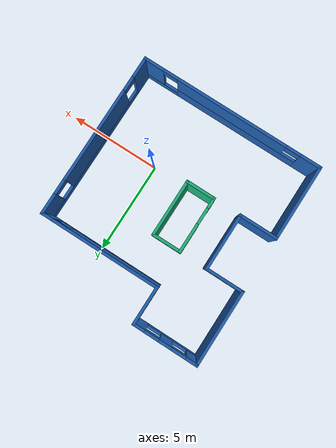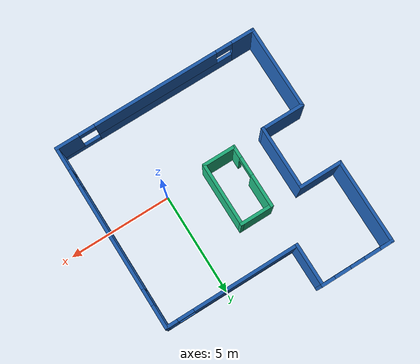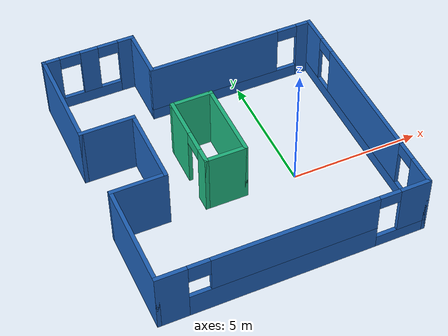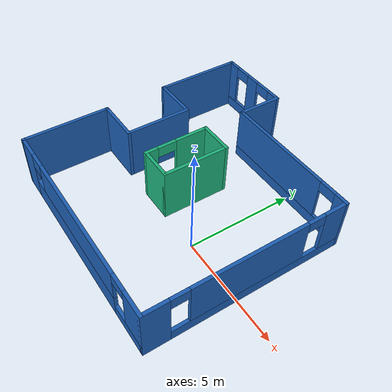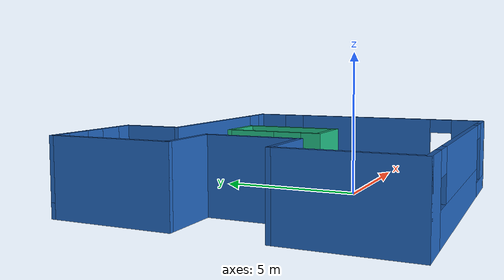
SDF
<?xml version='1.0'?>
<sdf version='1.6'>
  <model name='house'>
    <pose frame=''>-2 1.5 0 0 -0 0</pose>
    <link name='Wall_10'>
      <collision name='Wall_10_Collision'>
        <geometry>
          <box>
            <size>2.14909 0.15 2.5</size>
          </box>
        </geometry>
        <pose frame=''>0 0 1.25 0 -0 0</pose>
      </collision>
      <visual name='Wall_10_Visual'>
        <pose frame=''>0 0 1.25 0 -0 0</pose>
        <geometry>
          <box>
            <size>2.14909 0.15 2.5</size>
          </box>
        </geometry>
        <material>
          <script>
            <uri>file://media/materials/scripts/gazebo.material</uri>
            <name>Gazebo/Grey</name>
          </script>
          <ambient>0.117647 0.376471 0.709804 1</ambient>
        </material>
        <meta>
          <layer>0</layer>
        </meta>
      </visual>
      <pose frame=''>-1.5 4.5 0 0 -0 1.5708</pose>
    </link>
    <link name='Wall_11'>
      <pose frame=''>-3.25 5.5 0 0 -0 3.14159</pose>
      <visual name='Wall_11_Visual_0'>
        <pose frame=''>-1.4875 0 1.25 0 -0 0</pose>
        <geometry>
          <box>
            <size>0.675 0.15 2.5</size>
          </box>
        </geometry>
        <material>
          <script>
            <uri>file://media/materials/scripts/gazebo.material</uri>
            <name>Gazebo/Grey</name>
          </script>
          <ambient>0.117647 0.376471 0.709804 1</ambient>
        </material>
        <meta>
          <layer>0</layer>
        </meta>
      </visual>
      <collision name='Wall_11_Collision_0'>
        <geometry>
          <box>
            <size>0.675 0.15 2.5</size>
          </box>
        </geometry>
        <pose frame=''>-1.4875 0 1.25 0 -0 0</pose>
      </collision>
      <visual name='Wall_11_Visual_1'>
        <pose frame=''>0.3375 0 0.25 0 -0 0</pose>
        <geometry>
          <box>
            <size>2.975 0.15 0.5</size>
          </box>
        </geometry>
        <material>
          <script>
            <uri>file://media/materials/scripts/gazebo.material</uri>
            <name>Gazebo/Grey</name>
          </script>
          <ambient>0.117647 0.376471 0.709804 1</ambient>
        </material>
        <meta>
          <layer>0</layer>
        </meta>
      </visual>
      <collision name='Wall_11_Collision_1'>
        <geometry>
          <box>
            <size>2.975 0.15 0.5</size>
          </box>
        </geometry>
        <pose frame=''>0.3375 0 0.25 0 -0 0</pose>
      </collision>
      <visual name='Wall_11_Visual_2'>
        <pose frame=''>0 0 1.5 0 -0 0</pose>
        <geometry>
          <box>
            <size>0.7 0.15 2</size>
          </box>
        </geometry>
        <material>
          <script>
            <uri>file://media/materials/scripts/gazebo.material</uri>
            <name>Gazebo/Grey</name>
          </script>
          <ambient>0.117647 0.376471 0.709804 1</ambient>
        </material>
        <meta>
          <layer>0</layer>
        </meta>
      </visual>
      <collision name='Wall_11_Collision_2'>
        <geometry>
          <box>
            <size>0.7 0.15 2</size>
          </box>
        </geometry>
        <pose frame=''>0 0 1.5 0 -0 0</pose>
      </collision>
      <visual name='Wall_11_Visual_3'>
        <pose frame=''>1.4875 0 1.5 0 -0 0</pose>
        <geometry>
          <box>
            <size>0.675 0.15 2</size>
          </box>
        </geometry>
        <material>
          <script>
            <uri>file://media/materials/scripts/gazebo.material</uri>
            <name>Gazebo/Grey</name>
          </script>
          <ambient>0.117647 0.376471 0.709804 1</ambient>
        </material>
        <meta>
          <layer>0</layer>
        </meta>
      </visual>
      <collision name='Wall_11_Collision_3'>
        <geometry>
          <box>
            <size>0.675 0.15 2</size>
          </box>
        </geometry>
        <pose frame=''>1.4875 0 1.5 0 -0 0</pose>
      </collision>
      <visual name='Wall_11_Visual_4'>
        <pose frame=''>-0.75 0 2.25 0 -0 0</pose>
        <geometry>
          <box>
            <size>0.8 0.15 0.5</size>
          </box>
        </geometry>
        <material>
          <script>
            <uri>file://media/materials/scripts/gazebo.material</uri>
            <name>Gazebo/Grey</name>
          </script>
          <ambient>0.117647 0.376471 0.709804 1</ambient>
        </material>
        <meta>
          <layer>0</layer>
        </meta>
      </visual>
      <collision name='Wall_11_Collision_4'>
        <geometry>
          <box>
            <size>0.8 0.15 0.5</size>
          </box>
        </geometry>
        <pose frame=''>-0.75 0 2.25 0 -0 0</pose>
      </collision>
      <visual name='Wall_11_Visual_5'>
        <pose frame=''>0.75 0 2.25 0 -0 0</pose>
        <geometry>
          <box>
            <size>0.8 0.15 0.5</size>
          </box>
        </geometry>
        <material>
          <script>
            <uri>file://media/materials/scripts/gazebo.material</uri>
            <name>Gazebo/Grey</name>
          </script>
          <ambient>0.117647 0.376471 0.709804 1</ambient>
        </material>
        <meta>
          <layer>0</layer>
        </meta>
      </visual>
      <collision name='Wall_11_Collision_5'>
        <geometry>
          <box>
            <size>0.8 0.15 0.5</size>
          </box>
        </geometry>
        <pose frame=''>0.75 0 2.25 0 -0 0</pose>
      </collision>
    </link>
    <link name='Wall_13'>
      <pose frame=''>-1.5 0 0 0 0 -1.5708</pose>
      <visual name='Wall_13_Visual_0'>
        <pose frame=''>-0.7625 0 1.25 0 -0 0</pose>
        <geometry>
          <box>
            <size>1.625 0.15 2.5</size>
          </box>
        </geometry>
        <material>
          <script>
            <uri>file://media/materials/scripts/gazebo.material</uri>
            <name>Gazebo/Grey</name>
          </script>
          <ambient>0.117647 0.709804 0.494118 1</ambient>
        </material>
        <meta>
          <layer>0</layer>
        </meta>
      </visual>
      <collision name='Wall_13_Collision_0'>
        <geometry>
          <box>
            <size>1.625 0.15 2.5</size>
          </box>
        </geometry>
        <pose frame=''>-0.7625 0 1.25 0 -0 0</pose>
      </collision>
      <visual name='Wall_13_Visual_1'>
        <pose frame=''>1.2625 0 1.25 0 -0 0</pose>
        <geometry>
          <box>
            <size>0.625 0.15 2.5</size>
          </box>
        </geometry>
        <material>
          <script>
            <uri>file://media/materials/scripts/gazebo.material</uri>
            <name>Gazebo/Grey</name>
          </script>
          <ambient>0.117647 0.709804 0.494118 1</ambient>
        </material>
        <meta>
          <layer>0</layer>
        </meta>
      </visual>
      <collision name='Wall_13_Collision_1'>
        <geometry>
          <box>
            <size>0.625 0.15 2.5</size>
          </box>
        </geometry>
        <pose frame=''>1.2625 0 1.25 0 -0 0</pose>
      </collision>
      <visual name='Wall_13_Visual_2'>
        <pose frame=''>0.5 0 2.25 0 -0 0</pose>
        <geometry>
          <box>
            <size>0.9 0.15 0.5</size>
          </box>
        </geometry>
        <material>
          <script>
            <uri>file://media/materials/scripts/gazebo.material</uri>
            <name>Gazebo/Grey</name>
          </script>
          <ambient>0.117647 0.709804 0.494118 1</ambient>
        </material>
        <meta>
          <layer>0</layer>
        </meta>
      </visual>
      <collision name='Wall_13_Collision_2'>
        <geometry>
          <box>
            <size>0.9 0.15 0.5</size>
          </box>
        </geometry>
        <pose frame=''>0.5 0 2.25 0 -0 0</pose>
      </collision>
    </link>
    <link name='Wall_14'>
      <collision name='Wall_14_Collision'>
        <geometry>
          <box>
            <size>1.65 0.15 2.5</size>
          </box>
        </geometry>
        <pose frame=''>0 0 1.25 0 -0 0</pose>
      </collision>
      <visual name='Wall_14_Visual'>
        <pose frame=''>0 0 1.25 0 -0 0</pose>
        <geometry>
          <box>
            <size>1.65 0.15 2.5</size>
          </box>
        </geometry>
        <material>
          <script>
            <uri>file://media/materials/scripts/gazebo.material</uri>
            <name>Gazebo/Grey</name>
          </script>
          <ambient>0.117647 0.709804 0.494118 1</ambient>
        </material>
        <meta>
          <layer>0</layer>
        </meta>
      </visual>
      <pose frame=''>-0.75 -1.5 0 0 -0 0</pose>
    </link>
    <link name='Wall_15'>
      <collision name='Wall_15_Collision'>
        <geometry>
          <box>
            <size>3.15 0.15 2.5</size>
          </box>
        </geometry>
        <pose frame=''>0 0 1.25 0 -0 0</pose>
      </collision>
      <visual name='Wall_15_Visual'>
        <pose frame=''>0 0 1.25 0 -0 0</pose>
        <geometry>
          <box>
            <size>3.15 0.15 2.5</size>
          </box>
        </geometry>
        <material>
          <script>
            <uri>file://media/materials/scripts/gazebo.material</uri>
            <name>Gazebo/Grey</name>
          </script>
          <ambient>0.117647 0.709804 0.494118 1</ambient>
        </material>
        <meta>
          <layer>0</layer>
        </meta>
      </visual>
      <pose frame=''>0 0 0 0 -0 1.5708</pose>
    </link>
    <link name='Wall_16'>
      <collision name='Wall_16_Collision'>
        <geometry>
          <box>
            <size>1.65 0.15 2.5</size>
          </box>
        </geometry>
        <pose frame=''>0 0 1.25 0 -0 0</pose>
      </collision>
      <visual name='Wall_16_Visual'>
        <pose frame=''>0 0 1.25 0 -0 0</pose>
        <geometry>
          <box>
            <size>1.65 0.15 2.5</size>
          </box>
        </geometry>
        <material>
          <script>
            <uri>file://media/materials/scripts/gazebo.material</uri>
            <name>Gazebo/Grey</name>
          </script>
          <ambient>0.117647 0.709804 0.494118 1</ambient>
        </material>
        <meta>
          <layer>0</layer>
        </meta>
      </visual>
      <pose frame=''>-0.75 1.5 0 0 -0 3.14159</pose>
    </link>
    <link name='Wall_2'>
      <collision name='Wall_2_Collision'>
        <geometry>
          <box>
            <size>4.15 0.15 2.5</size>
          </box>
        </geometry>
        <pose frame=''>0 0 1.25 0 -0 0</pose>
      </collision>
      <visual name='Wall_2_Visual'>
        <pose frame=''>0 0 1.25 0 -0 0</pose>
        <geometry>
          <box>
            <size>4.15 0.15 2.5</size>
          </box>
        </geometry>
        <material>
          <script>
            <uri>file://media/materials/scripts/gazebo.material</uri>
            <name>Gazebo/Grey</name>
          </script>
          <ambient>0.117647 0.376471 0.709804 1</ambient>
        </material>
        <meta>
          <layer>0</layer>
        </meta>
      </visual>
      <pose frame=''>-5 3.5 0 0 0 -1.5708</pose>
    </link>
    <link name='Wall_3'>
      <collision name='Wall_3_Collision'>
        <geometry>
          <box>
            <size>2.15 0.15 2.5</size>
          </box>
        </geometry>
        <pose frame=''>0 0 1.25 0 -0 0</pose>
      </collision>
      <visual name='Wall_3_Visual'>
        <pose frame=''>0 0 1.25 0 -0 0</pose>
        <geometry>
          <box>
            <size>2.15 0.15 2.5</size>
          </box>
        </geometry>
        <material>
          <script>
            <uri>file://media/materials/scripts/gazebo.material</uri>
            <name>Gazebo/Grey</name>
          </script>
          <ambient>0.117647 0.376471 0.709804 1</ambient>
        </material>
        <meta>
          <layer>0</layer>
        </meta>
      </visual>
      <pose frame=''>-4 1.5 0 0 -0 0</pose>
    </link>
    <link name='Wall_4'>
      <collision name='Wall_4_Collision'>
        <geometry>
          <box>
            <size>3.15 0.15 2.5</size>
          </box>
        </geometry>
        <pose frame=''>0 0 1.25 0 -0 0</pose>
      </collision>
      <visual name='Wall_4_Visual'>
        <pose frame=''>0 0 1.25 0 -0 0</pose>
        <geometry>
          <box>
            <size>3.15 0.15 2.5</size>
          </box>
        </geometry>
        <material>
          <script>
            <uri>file://media/materials/scripts/gazebo.material</uri>
            <name>Gazebo/Grey</name>
          </script>
          <ambient>0.117647 0.376471 0.709804 1</ambient>
        </material>
        <meta>
          <layer>0</layer>
        </meta>
      </visual>
      <pose frame=''>-3 0 0 0 0 -1.5708</pose>
    </link>
    <link name='Wall_5'>
      <collision name='Wall_5_Collision'>
        <geometry>
          <box>
            <size>2.15 0.15 2.5</size>
          </box>
        </geometry>
        <pose frame=''>0 0 1.25 0 -0 0</pose>
      </collision>
      <visual name='Wall_5_Visual'>
        <pose frame=''>0 0 1.25 0 -0 0</pose>
        <geometry>
          <box>
            <size>2.15 0.15 2.5</size>
          </box>
        </geometry>
        <material>
          <script>
            <uri>file://media/materials/scripts/gazebo.material</uri>
            <name>Gazebo/Grey</name>
          </script>
          <ambient>0.117647 0.376471 0.709804 1</ambient>
        </material>
        <meta>
          <layer>0</layer>
        </meta>
      </visual>
      <pose frame=''>-4 -1.5 0 0 -0 3.14159</pose>
    </link>
    <link name='Wall_6'>
      <collision name='Wall_6_Collision'>
        <geometry>
          <box>
            <size>4.15 0.15 2.5</size>
          </box>
        </geometry>
        <pose frame=''>0 0 1.25 0 -0 0</pose>
      </collision>
      <visual name='Wall_6_Visual'>
        <pose frame=''>0 0 1.25 0 -0 0</pose>
        <geometry>
          <box>
            <size>4.15 0.15 2.5</size>
          </box>
        </geometry>
        <material>
          <script>
            <uri>file://media/materials/scripts/gazebo.material</uri>
            <name>Gazebo/Grey</name>
          </script>
          <ambient>0.117647 0.376471 0.709804 1</ambient>
        </material>
        <meta>
          <layer>0</layer>
        </meta>
      </visual>
      <pose frame=''>-5 -3.5 0 0 0 -1.5708</pose>
    </link>
    <link name='Wall_7'>
      <pose frame=''>0 -5.5 0 0 -0 0</pose>
      <visual name='Wall_7_Visual_0'>
        <pose frame=''>-4.4875 0 1.25 0 -0 0</pose>
        <geometry>
          <box>
            <size>1.175 0.15 2.5</size>
          </box>
        </geometry>
        <material>
          <script>
            <uri>file://media/materials/scripts/gazebo.material</uri>
            <name>Gazebo/Grey</name>
          </script>
          <ambient>0.117647 0.376471 0.709804 1</ambient>
        </material>
        <meta>
          <layer>0</layer>
        </meta>
      </visual>
      <collision name='Wall_7_Collision_0'>
        <geometry>
          <box>
            <size>1.175 0.15 2.5</size>
          </box>
        </geometry>
        <pose frame=''>-4.4875 0 1.25 0 -0 0</pose>
      </collision>
      <visual name='Wall_7_Visual_1'>
        <pose frame=''>-0.4 0 0.5 0 -0 0</pose>
        <geometry>
          <box>
            <size>7 0.15 1</size>
          </box>
        </geometry>
        <material>
          <script>
            <uri>file://media/materials/scripts/gazebo.material</uri>
            <name>Gazebo/Grey</name>
          </script>
          <ambient>0.117647 0.376471 0.709804 1</ambient>
        </material>
        <meta>
          <layer>0</layer>
        </meta>
      </visual>
      <collision name='Wall_7_Collision_1'>
        <geometry>
          <box>
            <size>7 0.15 1</size>
          </box>
        </geometry>
        <pose frame=''>-0.4 0 0.5 0 -0 0</pose>
      </collision>
      <visual name='Wall_7_Visual_2'>
        <pose frame=''>4.0875 0 0.25 0 -0 0</pose>
        <geometry>
          <box>
            <size>1.975 0.15 0.5</size>
          </box>
        </geometry>
        <material>
          <script>
            <uri>file://media/materials/scripts/gazebo.material</uri>
            <name>Gazebo/Grey</name>
          </script>
          <ambient>0.117647 0.376471 0.709804 1</ambient>
        </material>
        <meta>
          <layer>0</layer>
        </meta>
      </visual>
      <collision name='Wall_7_Collision_2'>
        <geometry>
          <box>
            <size>1.975 0.15 0.5</size>
          </box>
        </geometry>
        <pose frame=''>4.0875 0 0.25 0 -0 0</pose>
      </collision>
      <visual name='Wall_7_Visual_3'>
        <pose frame=''>4.4875 0 1.5 0 -0 0</pose>
        <geometry>
          <box>
            <size>1.175 0.15 2</size>
          </box>
        </geometry>
        <material>
          <script>
            <uri>file://media/materials/scripts/gazebo.material</uri>
            <name>Gazebo/Grey</name>
          </script>
          <ambient>0.117647 0.376471 0.709804 1</ambient>
        </material>
        <meta>
          <layer>0</layer>
        </meta>
      </visual>
      <collision name='Wall_7_Collision_3'>
        <geometry>
          <box>
            <size>1.175 0.15 2</size>
          </box>
        </geometry>
        <pose frame=''>4.4875 0 1.5 0 -0 0</pose>
      </collision>
      <visual name='Wall_7_Visual_4'>
        <pose frame=''>-0 0 1.75 0 -0 0</pose>
        <geometry>
          <box>
            <size>6.2 0.15 1.5</size>
          </box>
        </geometry>
        <material>
          <script>
            <uri>file://media/materials/scripts/gazebo.material</uri>
            <name>Gazebo/Grey</name>
          </script>
          <ambient>0.117647 0.376471 0.709804 1</ambient>
        </material>
        <meta>
          <layer>0</layer>
        </meta>
      </visual>
      <collision name='Wall_7_Collision_4'>
        <geometry>
          <box>
            <size>6.2 0.15 1.5</size>
          </box>
        </geometry>
        <pose frame=''>-0 0 1.75 0 -0 0</pose>
      </collision>
      <visual name='Wall_7_Visual_5'>
        <pose frame=''>-3.5 0 2.15 0 -0 0</pose>
        <geometry>
          <box>
            <size>0.8 0.15 0.7</size>
          </box>
        </geometry>
        <material>
          <script>
            <uri>file://media/materials/scripts/gazebo.material</uri>
            <name>Gazebo/Grey</name>
          </script>
          <ambient>0.117647 0.376471 0.709804 1</ambient>
        </material>
        <meta>
          <layer>0</layer>
        </meta>
      </visual>
      <collision name='Wall_7_Collision_5'>
        <geometry>
          <box>
            <size>0.8 0.15 0.7</size>
          </box>
        </geometry>
        <pose frame=''>-3.5 0 2.15 0 -0 0</pose>
      </collision>
      <visual name='Wall_7_Visual_6'>
        <pose frame=''>3.5 0 2.25 0 -0 0</pose>
        <geometry>
          <box>
            <size>0.8 0.15 0.5</size>
          </box>
        </geometry>
        <material>
          <script>
            <uri>file://media/materials/scripts/gazebo.material</uri>
            <name>Gazebo/Grey</name>
          </script>
          <ambient>0.117647 0.376471 0.709804 1</ambient>
        </material>
        <meta>
          <layer>0</layer>
        </meta>
      </visual>
      <collision name='Wall_7_Collision_6'>
        <geometry>
          <box>
            <size>0.8 0.15 0.5</size>
          </box>
        </geometry>
        <pose frame=''>3.5 0 2.25 0 -0 0</pose>
      </collision>
    </link>
    <link name='Wall_8'>
      <pose frame=''>5 -1 0 0 -0 1.5708</pose>
      <visual name='Wall_8_Visual_0'>
        <pose frame=''>-3.9875 0 1.25 0 -0 0</pose>
        <geometry>
          <box>
            <size>1.175 0.15 2.5</size>
          </box>
        </geometry>
        <material>
          <script>
            <uri>file://media/materials/scripts/gazebo.material</uri>
            <name>Gazebo/Grey</name>
          </script>
          <ambient>0.117647 0.376471 0.709804 1</ambient>
        </material>
        <meta>
          <layer>0</layer>
        </meta>
      </visual>
      <collision name='Wall_8_Collision_0'>
        <geometry>
          <box>
            <size>1.175 0.15 2.5</size>
          </box>
        </geometry>
        <pose frame=''>-3.9875 0 1.25 0 -0 0</pose>
      </collision>
      <visual name='Wall_8_Visual_1'>
        <pose frame=''>0.5875 0 0.25 0 -0 0</pose>
        <geometry>
          <box>
            <size>7.975 0.15 0.5</size>
          </box>
        </geometry>
        <material>
          <script>
            <uri>file://media/materials/scripts/gazebo.material</uri>
            <name>Gazebo/Grey</name>
          </script>
          <ambient>0.117647 0.376471 0.709804 1</ambient>
        </material>
        <meta>
          <layer>0</layer>
        </meta>
      </visual>
      <collision name='Wall_8_Collision_1'>
        <geometry>
          <box>
            <size>7.975 0.15 0.5</size>
          </box>
        </geometry>
        <pose frame=''>0.5875 0 0.25 0 -0 0</pose>
      </collision>
      <visual name='Wall_8_Visual_2'>
        <pose frame=''>0.004987 0 1.5 0 -0 0</pose>
        <geometry>
          <box>
            <size>5.20997 0.15 2</size>
          </box>
        </geometry>
        <material>
          <script>
            <uri>file://media/materials/scripts/gazebo.material</uri>
            <name>Gazebo/Grey</name>
          </script>
          <ambient>0.117647 0.376471 0.709804 1</ambient>
        </material>
        <meta>
          <layer>0</layer>
        </meta>
      </visual>
      <collision name='Wall_8_Collision_2'>
        <geometry>
          <box>
            <size>5.20997 0.15 2</size>
          </box>
        </geometry>
        <pose frame=''>0.004987 0 1.5 0 -0 0</pose>
      </collision>
      <visual name='Wall_8_Visual_3'>
        <pose frame=''>3.99249 0 1.5 0 -0 0</pose>
        <geometry>
          <box>
            <size>1.16503 0.15 2</size>
          </box>
        </geometry>
        <material>
          <script>
            <uri>file://media/materials/scripts/gazebo.material</uri>
            <name>Gazebo/Grey</name>
          </script>
          <ambient>0.117647 0.376471 0.709804 1</ambient>
        </material>
        <meta>
          <layer>0</layer>
        </meta>
      </visual>
      <collision name='Wall_8_Collision_3'>
        <geometry>
          <box>
            <size>1.16503 0.15 2</size>
          </box>
        </geometry>
        <pose frame=''>3.99249 0 1.5 0 -0 0</pose>
      </collision>
      <visual name='Wall_8_Visual_4'>
        <pose frame=''>-3 0 2.25 0 -0 0</pose>
        <geometry>
          <box>
            <size>0.8 0.15 0.5</size>
          </box>
        </geometry>
        <material>
          <script>
            <uri>file://media/materials/scripts/gazebo.material</uri>
            <name>Gazebo/Grey</name>
          </script>
          <ambient>0.117647 0.376471 0.709804 1</ambient>
        </material>
        <meta>
          <layer>0</layer>
        </meta>
      </visual>
      <collision name='Wall_8_Collision_4'>
        <geometry>
          <box>
            <size>0.8 0.15 0.5</size>
          </box>
        </geometry>
        <pose frame=''>-3 0 2.25 0 -0 0</pose>
      </collision>
      <visual name='Wall_8_Visual_5'>
        <pose frame=''>3.00997 0 2.25 0 -0 0</pose>
        <geometry>
          <box>
            <size>0.8 0.15 0.5</size>
          </box>
        </geometry>
        <material>
          <script>
            <uri>file://media/materials/scripts/gazebo.material</uri>
            <name>Gazebo/Grey</name>
          </script>
          <ambient>0.117647 0.376471 0.709804 1</ambient>
        </material>
        <meta>
          <layer>0</layer>
        </meta>
      </visual>
      <collision name='Wall_8_Collision_5'>
        <geometry>
          <box>
            <size>0.8 0.15 0.5</size>
          </box>
        </geometry>
        <pose frame=''>3.00997 0 2.25 0 -0 0</pose>
      </collision>
    </link>
    <link name='Wall_9'>
      <pose frame=''>1.75 3.5 0 0 -0 3.14159</pose>
      <visual name='Wall_9_Visual_0'>
        <pose frame=''>-3.00663 0 1.25 0 -0 0</pose>
        <geometry>
          <box>
            <size>0.636747 0.15 2.5</size>
          </box>
        </geometry>
        <material>
          <script>
            <uri>file://media/materials/scripts/gazebo.material</uri>
            <name>Gazebo/Grey</name>
          </script>
          <ambient>0.117647 0.376471 0.709804 1</ambient>
        </material>
        <meta>
          <layer>0</layer>
        </meta>
      </visual>
      <collision name='Wall_9_Collision_0'>
        <geometry>
          <box>
            <size>0.636747 0.15 2.5</size>
          </box>
        </geometry>
        <pose frame=''>-3.00663 0 1.25 0 -0 0</pose>
      </collision>
      <visual name='Wall_9_Visual_1'>
        <pose frame=''>0.318374 0 0.25 0 -0 0</pose>
        <geometry>
          <box>
            <size>6.01325 0.15 0.5</size>
          </box>
        </geometry>
        <material>
          <script>
            <uri>file://media/materials/scripts/gazebo.material</uri>
            <name>Gazebo/Grey</name>
          </script>
          <ambient>0.117647 0.376471 0.709804 1</ambient>
        </material>
        <meta>
          <layer>0</layer>
        </meta>
      </visual>
      <collision name='Wall_9_Collision_1'>
        <geometry>
          <box>
            <size>6.01325 0.15 0.5</size>
          </box>
        </geometry>
        <pose frame=''>0.318374 0 0.25 0 -0 0</pose>
      </collision>
      <visual name='Wall_9_Visual_2'>
        <pose frame=''>0.718374 0 1.5 0 -0 0</pose>
        <geometry>
          <box>
            <size>5.21325 0.15 2</size>
          </box>
        </geometry>
        <material>
          <script>
            <uri>file://media/materials/scripts/gazebo.material</uri>
            <name>Gazebo/Grey</name>
          </script>
          <ambient>0.117647 0.376471 0.709804 1</ambient>
        </material>
        <meta>
          <layer>0</layer>
        </meta>
      </visual>
      <collision name='Wall_9_Collision_2'>
        <geometry>
          <box>
            <size>5.21325 0.15 2</size>
          </box>
        </geometry>
        <pose frame=''>0.718374 0 1.5 0 -0 0</pose>
      </collision>
      <visual name='Wall_9_Visual_3'>
        <pose frame=''>-2.28825 0 2.25 0 -0 0</pose>
        <geometry>
          <box>
            <size>0.8 0.15 0.5</size>
          </box>
        </geometry>
        <material>
          <script>
            <uri>file://media/materials/scripts/gazebo.material</uri>
            <name>Gazebo/Grey</name>
          </script>
          <ambient>0.117647 0.376471 0.709804 1</ambient>
        </material>
        <meta>
          <layer>0</layer>
        </meta>
      </visual>
      <collision name='Wall_9_Collision_3'>
        <geometry>
          <box>
            <size>0.8 0.15 0.5</size>
          </box>
        </geometry>
        <pose frame=''>-2.28825 0 2.25 0 -0 0</pose>
      </collision>
    </link>
    <static>1</static>
  </model>
</sdf>
